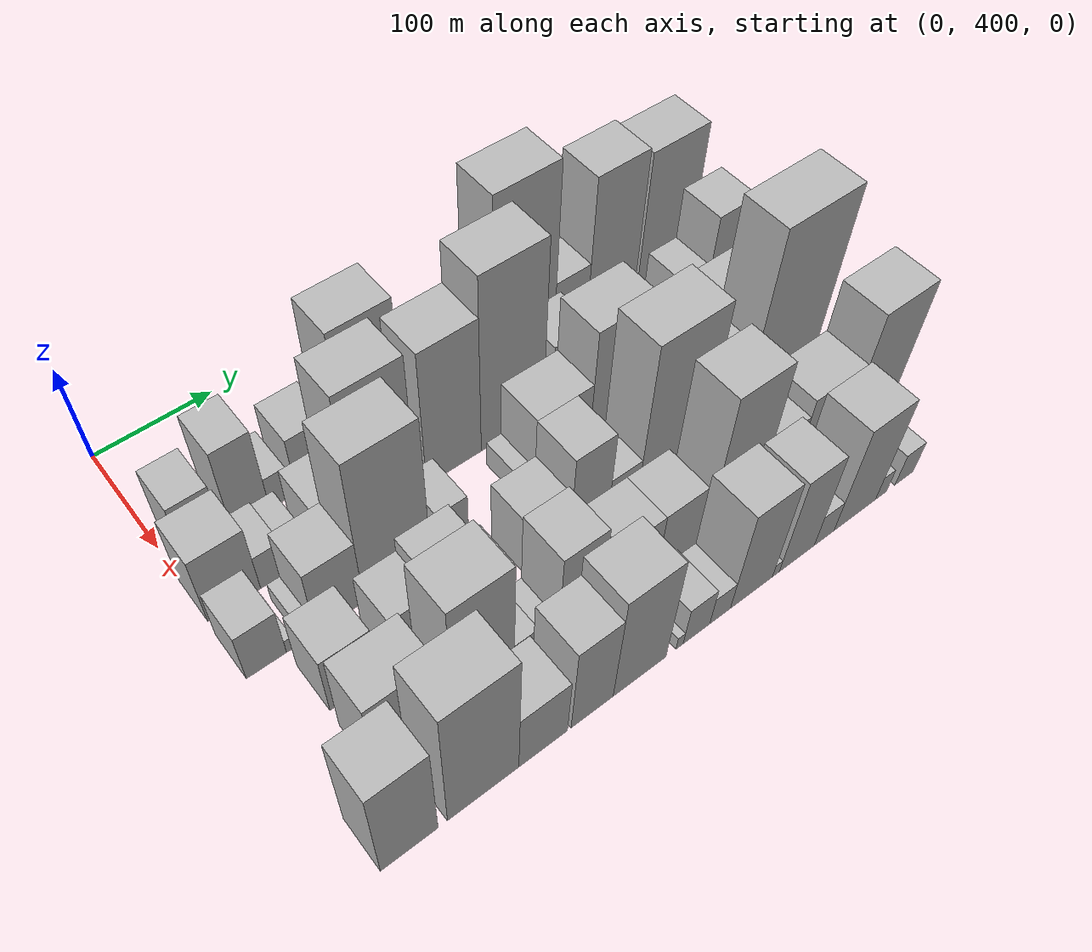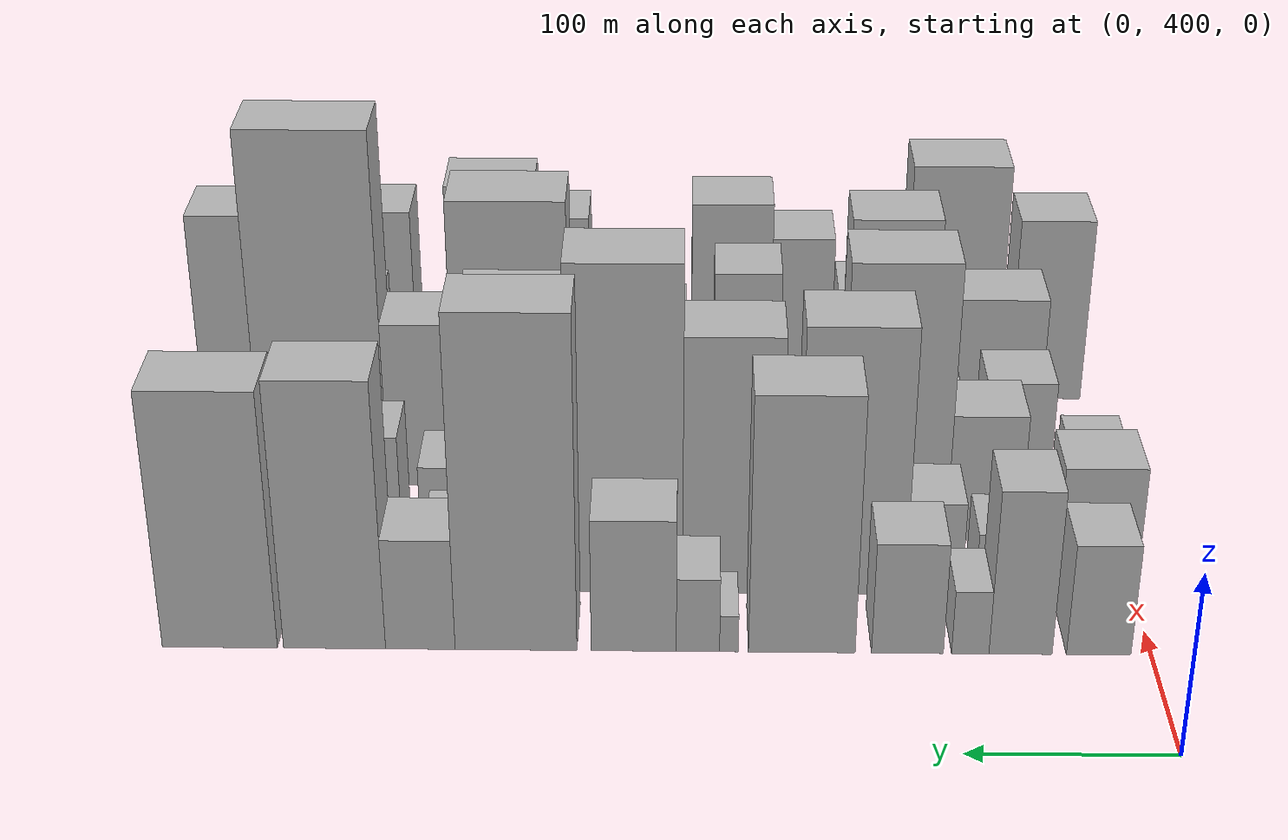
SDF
<sdf version="1.6">
 <world name="default">
  <model name="building_40">
   <static>1</static>
   <pose>100.0000 425.6944 0 0.000000 0.000000 0.000000</pose>
   <link name="link">
    <pose>0 0 31.50 0 0 0</pose>
    <collision name="collision"><geometry><box><size>40.0000 31.6009 63.0000</size></box></geometry></collision>
    <visual name="visual">
     <cast_shadows>0</cast_shadows>
     <geometry><box><size>40.0000 31.6009 63.0000</size></box></geometry>
     <material>
      <script>
       <uri>model://HANNAS_wall/materials/scripts</uri>
       <uri>model://HANNAS_wall/materials/textures</uri>
       <name>vrc/HANNAS_wall</name>
      </script>
     </material>
    </visual>
   </link>
  </model>
  <model name="building_41">
   <static>1</static>
   <pose>100.0000 463.9715 0 0.000000 0.000000 0.000000</pose>
   <link name="link">
    <pose>0 0 46.50 0 0 0</pose>
    <collision name="collision"><geometry><box><size>40.0000 30.9533 93.0000</size></box></geometry></collision>
    <visual name="visual">
     <cast_shadows>0</cast_shadows>
     <geometry><box><size>40.0000 30.9533 93.0000</size></box></geometry>
     <material>
      <script>
       <uri>model://HANNAS_wall/materials/scripts</uri>
       <uri>model://HANNAS_wall/materials/textures</uri>
       <name>vrc/HANNAS_wall</name>
      </script>
     </material>
    </visual>
   </link>
  </model>
  <model name="building_42">
   <static>1</static>
   <pose>100.0000 488.6046 0 0.000000 0.000000 0.000000</pose>
   <link name="link">
    <pose>0 0 18.00 0 0 0</pose>
    <collision name="collision"><geometry><box><size>40.0000 18.3129 36.0000</size></box></geometry></collision>
    <visual name="visual">
     <cast_shadows>0</cast_shadows>
     <geometry><box><size>40.0000 18.3129 36.0000</size></box></geometry>
     <material>
      <script>
       <uri>model://HANNAS_wall/materials/scripts</uri>
       <uri>model://HANNAS_wall/materials/textures</uri>
       <name>vrc/HANNAS_wall</name>
      </script>
     </material>
    </visual>
   </link>
  </model>
  <model name="building_43">
   <static>1</static>
   <pose>100.0000 519.3951 0 0.000000 0.000000 0.000000</pose>
   <link name="link">
    <pose>0 0 31.50 0 0 0</pose>
    <collision name="collision"><geometry><box><size>40.0000 35.2682 63.0000</size></box></geometry></collision>
    <visual name="visual">
     <cast_shadows>0</cast_shadows>
     <geometry><box><size>40.0000 35.2682 63.0000</size></box></geometry>
     <material>
      <script>
       <uri>model://HANNAS_wall/materials/scripts</uri>
       <uri>model://HANNAS_wall/materials/textures</uri>
       <name>vrc/HANNAS_wall</name>
      </script>
     </material>
    </visual>
   </link>
  </model>
  <model name="building_44">
   <static>1</static>
   <pose>100.0000 571.2320 0 0.000000 0.000000 0.000000</pose>
   <link name="link">
    <pose>0 0 72.00 0 0 0</pose>
    <collision name="collision"><geometry><box><size>40.0000 52.4056 144.0000</size></box></geometry></collision>
    <visual name="visual">
     <cast_shadows>0</cast_shadows>
     <geometry><box><size>40.0000 52.4056 144.0000</size></box></geometry>
     <material>
      <script>
       <uri>model://HANNAS_wall/materials/scripts</uri>
       <uri>model://HANNAS_wall/materials/textures</uri>
       <name>vrc/HANNAS_wall</name>
      </script>
     </material>
    </visual>
   </link>
  </model>
  <model name="building_45">
   <static>1</static>
   <pose>100.0000 607.0281 0 0.000000 0.000000 0.000000</pose>
   <link name="link">
    <pose>0 0 10.50 0 0 0</pose>
    <collision name="collision"><geometry><box><size>40.0000 9.1866 21.0000</size></box></geometry></collision>
    <visual name="visual">
     <cast_shadows>0</cast_shadows>
     <geometry><box><size>40.0000 9.1866 21.0000</size></box></geometry>
     <material>
      <script>
       <uri>model://HANNAS_wall/materials/scripts</uri>
       <uri>model://HANNAS_wall/materials/textures</uri>
       <name>vrc/HANNAS_wall</name>
      </script>
     </material>
    </visual>
   </link>
  </model>
  <model name="building_46">
   <static>1</static>
   <pose>100.0000 622.2681 0 0.000000 0.000000 0.000000</pose>
   <link name="link">
    <pose>0 0 21.00 0 0 0</pose>
    <collision name="collision"><geometry><box><size>40.0000 21.2934 42.0000</size></box></geometry></collision>
    <visual name="visual">
     <cast_shadows>0</cast_shadows>
     <geometry><box><size>40.0000 21.2934 42.0000</size></box></geometry>
     <material>
      <script>
       <uri>model://HANNAS_wall/materials/scripts</uri>
       <uri>model://HANNAS_wall/materials/textures</uri>
       <name>vrc/HANNAS_wall</name>
      </script>
     </material>
    </visual>
   </link>
  </model>
  <model name="building_47">
   <static>1</static>
   <pose>100.0000 653.8330 0 0.000000 0.000000 0.000000</pose>
   <link name="link">
    <pose>0 0 37.50 0 0 0</pose>
    <collision name="collision"><geometry><box><size>40.0000 41.8363 75.0000</size></box></geometry></collision>
    <visual name="visual">
     <cast_shadows>0</cast_shadows>
     <geometry><box><size>40.0000 41.8363 75.0000</size></box></geometry>
     <material>
      <script>
       <uri>model://HANNAS_wall/materials/scripts</uri>
       <uri>model://HANNAS_wall/materials/textures</uri>
       <name>vrc/HANNAS_wall</name>
      </script>
     </material>
    </visual>
   </link>
  </model>
  <model name="building_48">
   <static>1</static>
   <pose>100.0000 711.7514 0 0.000000 0.000000 0.000000</pose>
   <link name="link">
    <pose>0 0 93.00 0 0 0</pose>
    <collision name="collision"><geometry><box><size>40.0000 60.0006 186.0000</size></box></geometry></collision>
    <visual name="visual">
     <cast_shadows>0</cast_shadows>
     <geometry><box><size>40.0000 60.0006 186.0000</size></box></geometry>
     <material>
      <script>
       <uri>model://HANNAS_wall/materials/scripts</uri>
       <uri>model://HANNAS_wall/materials/textures</uri>
       <name>vrc/HANNAS_wall</name>
      </script>
     </material>
    </visual>
   </link>
  </model>
  <model name="building_49">
   <static>1</static>
   <pose>100.0000 758.8927 0 0.000000 0.000000 0.000000</pose>
   <link name="link">
    <pose>0 0 31.50 0 0 0</pose>
    <collision name="collision"><geometry><box><size>40.0000 34.2820 63.0000</size></box></geometry></collision>
    <visual name="visual">
     <cast_shadows>0</cast_shadows>
     <geometry><box><size>40.0000 34.2820 63.0000</size></box></geometry>
     <material>
      <script>
       <uri>model://HANNAS_wall/materials/scripts</uri>
       <uri>model://HANNAS_wall/materials/textures</uri>
       <name>vrc/HANNAS_wall</name>
      </script>
     </material>
    </visual>
   </link>
  </model>
  <model name="building_50">
   <static>1</static>
   <pose>100.0000 801.2108 0 0.000000 0.000000 0.000000</pose>
   <link name="link">
    <pose>0 0 75.00 0 0 0</pose>
    <collision name="collision"><geometry><box><size>40.0000 50.3542 150.0000</size></box></geometry></collision>
    <visual name="visual">
     <cast_shadows>0</cast_shadows>
     <geometry><box><size>40.0000 50.3542 150.0000</size></box></geometry>
     <material>
      <script>
       <uri>model://HANNAS_wall/materials/scripts</uri>
       <uri>model://HANNAS_wall/materials/textures</uri>
       <name>vrc/HANNAS_wall</name>
      </script>
     </material>
    </visual>
   </link>
  </model>
  <model name="building_51">
   <static>1</static>
   <pose>100.0000 857.8404 0 0.000000 0.000000 0.000000</pose>
   <link name="link">
    <pose>0 0 72.00 0 0 0</pose>
    <collision name="collision"><geometry><box><size>40.0000 56.9049 144.0000</size></box></geometry></collision>
    <visual name="visual">
     <cast_shadows>0</cast_shadows>
     <geometry><box><size>40.0000 56.9049 144.0000</size></box></geometry>
     <material>
      <script>
       <uri>model://HANNAS_wall/materials/scripts</uri>
       <uri>model://HANNAS_wall/materials/textures</uri>
       <name>vrc/HANNAS_wall</name>
      </script>
     </material>
    </visual>
   </link>
  </model>
  <model name="building_88">
   <static>1</static>
   <pose>152.0000 419.7935 0 0.000000 0.000000 0.000000</pose>
   <link name="link">
    <pose>0 0 37.50 0 0 0</pose>
    <collision name="collision"><geometry><box><size>40.0000 41.3453 75.0000</size></box></geometry></collision>
    <visual name="visual">
     <cast_shadows>0</cast_shadows>
     <geometry><box><size>40.0000 41.3453 75.0000</size></box></geometry>
     <material>
      <script>
       <uri>model://HANNAS_wall/materials/scripts</uri>
       <uri>model://HANNAS_wall/materials/textures</uri>
       <name>vrc/HANNAS_wall</name>
      </script>
     </material>
    </visual>
   </link>
  </model>
  <model name="building_89">
   <static>1</static>
   <pose>152.0000 451.4452 0 0.000000 0.000000 0.000000</pose>
   <link name="link">
    <pose>0 0 19.50 0 0 0</pose>
    <collision name="collision"><geometry><box><size>40.0000 21.9581 39.0000</size></box></geometry></collision>
    <visual name="visual">
     <cast_shadows>0</cast_shadows>
     <geometry><box><size>40.0000 21.9581 39.0000</size></box></geometry>
     <material>
      <script>
       <uri>model://HANNAS_wall/materials/scripts</uri>
       <uri>model://HANNAS_wall/materials/textures</uri>
       <name>vrc/HANNAS_wall</name>
      </script>
     </material>
    </visual>
   </link>
  </model>
  <model name="building_90">
   <static>1</static>
   <pose>152.0000 471.5481 0 0.000000 0.000000 0.000000</pose>
   <link name="link">
    <pose>0 0 18.00 0 0 0</pose>
    <collision name="collision"><geometry><box><size>40.0000 18.2478 36.0000</size></box></geometry></collision>
    <visual name="visual">
     <cast_shadows>0</cast_shadows>
     <geometry><box><size>40.0000 18.2478 36.0000</size></box></geometry>
     <material>
      <script>
       <uri>model://HANNAS_wall/materials/scripts</uri>
       <uri>model://HANNAS_wall/materials/textures</uri>
       <name>vrc/HANNAS_wall</name>
      </script>
     </material>
    </visual>
   </link>
  </model>
  <model name="building_91">
   <static>1</static>
   <pose>152.0000 501.9968 0 0.000000 0.000000 0.000000</pose>
   <link name="link">
    <pose>0 0 27.00 0 0 0</pose>
    <collision name="collision"><geometry><box><size>40.0000 28.6496 54.0000</size></box></geometry></collision>
    <visual name="visual">
     <cast_shadows>0</cast_shadows>
     <geometry><box><size>40.0000 28.6496 54.0000</size></box></geometry>
     <material>
      <script>
       <uri>model://HANNAS_wall/materials/scripts</uri>
       <uri>model://HANNAS_wall/materials/textures</uri>
       <name>vrc/HANNAS_wall</name>
      </script>
     </material>
    </visual>
   </link>
  </model>
  <model name="building_92">
   <static>1</static>
   <pose>152.0000 543.7386 0 0.000000 0.000000 0.000000</pose>
   <link name="link">
    <pose>0 0 76.50 0 0 0</pose>
    <collision name="collision"><geometry><box><size>40.0000 54.8338 153.0000</size></box></geometry></collision>
    <visual name="visual">
     <cast_shadows>0</cast_shadows>
     <geometry><box><size>40.0000 54.8338 153.0000</size></box></geometry>
     <material>
      <script>
       <uri>model://HANNAS_wall/materials/scripts</uri>
       <uri>model://HANNAS_wall/materials/textures</uri>
       <name>vrc/HANNAS_wall</name>
      </script>
     </material>
    </visual>
   </link>
  </model>
  <model name="building_93">
   <static>1</static>
   <pose>152.0000 605.1376 0 0.000000 0.000000 0.000000</pose>
   <link name="link">
    <pose>0 0 73.50 0 0 0</pose>
    <collision name="collision"><geometry><box><size>40.0000 49.9643 147.0000</size></box></geometry></collision>
    <visual name="visual">
     <cast_shadows>0</cast_shadows>
     <geometry><box><size>40.0000 49.9643 147.0000</size></box></geometry>
     <material>
      <script>
       <uri>model://HANNAS_wall/materials/scripts</uri>
       <uri>model://HANNAS_wall/materials/textures</uri>
       <name>vrc/HANNAS_wall</name>
      </script>
     </material>
    </visual>
   </link>
  </model>
  <model name="building_94">
   <static>1</static>
   <pose>152.0000 659.5156 0 0.000000 0.000000 0.000000</pose>
   <link name="link">
    <pose>0 0 93.00 0 0 0</pose>
    <collision name="collision"><geometry><box><size>40.0000 58.7918 186.0000</size></box></geometry></collision>
    <visual name="visual">
     <cast_shadows>0</cast_shadows>
     <geometry><box><size>40.0000 58.7918 186.0000</size></box></geometry>
     <material>
      <script>
       <uri>model://HANNAS_wall/materials/scripts</uri>
       <uri>model://HANNAS_wall/materials/textures</uri>
       <name>vrc/HANNAS_wall</name>
      </script>
     </material>
    </visual>
   </link>
  </model>
  <model name="building_95">
   <static>1</static>
   <pose>152.0000 716.8400 0 0.000000 0.000000 0.000000</pose>
   <link name="link">
    <pose>0 0 34.50 0 0 0</pose>
    <collision name="collision"><geometry><box><size>40.0000 37.8569 69.0000</size></box></geometry></collision>
    <visual name="visual">
     <cast_shadows>0</cast_shadows>
     <geometry><box><size>40.0000 37.8569 69.0000</size></box></geometry>
     <material>
      <script>
       <uri>model://HANNAS_wall/materials/scripts</uri>
       <uri>model://HANNAS_wall/materials/textures</uri>
       <name>vrc/HANNAS_wall</name>
      </script>
     </material>
    </visual>
   </link>
  </model>
  <model name="building_96">
   <static>1</static>
   <pose>152.0000 751.1101 0 0.000000 0.000000 0.000000</pose>
   <link name="link">
    <pose>0 0 18.00 0 0 0</pose>
    <collision name="collision"><geometry><box><size>40.0000 20.6834 36.0000</size></box></geometry></collision>
    <visual name="visual">
     <cast_shadows>0</cast_shadows>
     <geometry><box><size>40.0000 20.6834 36.0000</size></box></geometry>
     <material>
      <script>
       <uri>model://HANNAS_wall/materials/scripts</uri>
       <uri>model://HANNAS_wall/materials/textures</uri>
       <name>vrc/HANNAS_wall</name>
      </script>
     </material>
    </visual>
   </link>
  </model>
  <model name="building_97">
   <static>1</static>
   <pose>152.0000 839.6045 0 0.000000 0.000000 0.000000</pose>
   <link name="link">
    <pose>0 0 27.00 0 0 0</pose>
    <collision name="collision"><geometry><box><size>40.0000 28.7684 54.0000</size></box></geometry></collision>
    <visual name="visual">
     <cast_shadows>0</cast_shadows>
     <geometry><box><size>40.0000 28.7684 54.0000</size></box></geometry>
     <material>
      <script>
       <uri>model://HANNAS_wall/materials/scripts</uri>
       <uri>model://HANNAS_wall/materials/textures</uri>
       <name>vrc/HANNAS_wall</name>
      </script>
     </material>
    </visual>
   </link>
  </model>
  <model name="building_98">
   <static>1</static>
   <pose>152.0000 873.5390 0 0.000000 0.000000 0.000000</pose>
   <link name="link">
    <pose>0 0 52.50 0 0 0</pose>
    <collision name="collision"><geometry><box><size>40.0000 39.1006 105.0000</size></box></geometry></collision>
    <visual name="visual">
     <cast_shadows>0</cast_shadows>
     <geometry><box><size>40.0000 39.1006 105.0000</size></box></geometry>
     <material>
      <script>
       <uri>model://HANNAS_wall/materials/scripts</uri>
       <uri>model://HANNAS_wall/materials/textures</uri>
       <name>vrc/HANNAS_wall</name>
      </script>
     </material>
    </visual>
   </link>
  </model>
  <model name="building_135">
   <static>1</static>
   <pose>204.0000 413.5578 0 0.000000 0.000000 0.000000</pose>
   <link name="link">
    <pose>0 0 27.00 0 0 0</pose>
    <collision name="collision"><geometry><box><size>40.0000 30.7943 54.0000</size></box></geometry></collision>
    <visual name="visual">
     <cast_shadows>0</cast_shadows>
     <geometry><box><size>40.0000 30.7943 54.0000</size></box></geometry>
     <material>
      <script>
       <uri>model://HANNAS_wall/materials/scripts</uri>
       <uri>model://HANNAS_wall/materials/textures</uri>
       <name>vrc/HANNAS_wall</name>
      </script>
     </material>
    </visual>
   </link>
  </model>
  <model name="building_136">
   <static>1</static>
   <pose>204.0000 432.2280 0 0.000000 0.000000 0.000000</pose>
   <link name="link">
    <pose>0 0 7.50 0 0 0</pose>
    <collision name="collision"><geometry><box><size>40.0000 6.5461 15.0000</size></box></geometry></collision>
    <visual name="visual">
     <cast_shadows>0</cast_shadows>
     <geometry><box><size>40.0000 6.5461 15.0000</size></box></geometry>
     <material>
      <script>
       <uri>model://HANNAS_wall/materials/scripts</uri>
       <uri>model://HANNAS_wall/materials/textures</uri>
       <name>vrc/HANNAS_wall</name>
      </script>
     </material>
    </visual>
   </link>
  </model>
  <model name="building_137">
   <static>1</static>
   <pose>204.0000 446.5692 0 0.000000 0.000000 0.000000</pose>
   <link name="link">
    <pose>0 0 10.50 0 0 0</pose>
    <collision name="collision"><geometry><box><size>40.0000 10.1363 21.0000</size></box></geometry></collision>
    <visual name="visual">
     <cast_shadows>0</cast_shadows>
     <geometry><box><size>40.0000 10.1363 21.0000</size></box></geometry>
     <material>
      <script>
       <uri>model://HANNAS_wall/materials/scripts</uri>
       <uri>model://HANNAS_wall/materials/textures</uri>
       <name>vrc/HANNAS_wall</name>
      </script>
     </material>
    </visual>
   </link>
  </model>
  <model name="building_138">
   <static>1</static>
   <pose>204.0000 471.1603 0 0.000000 0.000000 0.000000</pose>
   <link name="link">
    <pose>0 0 37.50 0 0 0</pose>
    <collision name="collision"><geometry><box><size>40.0000 39.0460 75.0000</size></box></geometry></collision>
    <visual name="visual">
     <cast_shadows>0</cast_shadows>
     <geometry><box><size>40.0000 39.0460 75.0000</size></box></geometry>
     <material>
      <script>
       <uri>model://HANNAS_wall/materials/scripts</uri>
       <uri>model://HANNAS_wall/materials/textures</uri>
       <name>vrc/HANNAS_wall</name>
      </script>
     </material>
    </visual>
   </link>
  </model>
  <model name="building_139">
   <static>1</static>
   <pose>204.0000 518.7400 0 0.000000 0.000000 0.000000</pose>
   <link name="link">
    <pose>0 0 81.00 0 0 0</pose>
    <collision name="collision"><geometry><box><size>40.0000 56.1135 162.0000</size></box></geometry></collision>
    <visual name="visual">
     <cast_shadows>0</cast_shadows>
     <geometry><box><size>40.0000 56.1135 162.0000</size></box></geometry>
     <material>
      <script>
       <uri>model://HANNAS_wall/materials/scripts</uri>
       <uri>model://HANNAS_wall/materials/textures</uri>
       <name>vrc/HANNAS_wall</name>
      </script>
     </material>
    </visual>
   </link>
  </model>
  <model name="building_140">
   <static>1</static>
   <pose>204.0000 566.6855 0 0.000000 0.000000 0.000000</pose>
   <link name="link">
    <pose>0 0 24.00 0 0 0</pose>
    <collision name="collision"><geometry><box><size>40.0000 25.7774 48.0000</size></box></geometry></collision>
    <visual name="visual">
     <cast_shadows>0</cast_shadows>
     <geometry><box><size>40.0000 25.7774 48.0000</size></box></geometry>
     <material>
      <script>
       <uri>model://HANNAS_wall/materials/scripts</uri>
       <uri>model://HANNAS_wall/materials/textures</uri>
       <name>vrc/HANNAS_wall</name>
      </script>
     </material>
    </visual>
   </link>
  </model>
  <model name="building_141">
   <static>1</static>
   <pose>204.0000 632.7377 0 0.000000 0.000000 0.000000</pose>
   <link name="link">
    <pose>0 0 13.50 0 0 0</pose>
    <collision name="collision"><geometry><box><size>40.0000 13.4424 27.0000</size></box></geometry></collision>
    <visual name="visual">
     <cast_shadows>0</cast_shadows>
     <geometry><box><size>40.0000 13.4424 27.0000</size></box></geometry>
     <material>
      <script>
       <uri>model://HANNAS_wall/materials/scripts</uri>
       <uri>model://HANNAS_wall/materials/textures</uri>
       <name>vrc/HANNAS_wall</name>
      </script>
     </material>
    </visual>
   </link>
  </model>
  <model name="building_142">
   <static>1</static>
   <pose>204.0000 664.4616 0 0.000000 0.000000 0.000000</pose>
   <link name="link">
    <pose>0 0 42.00 0 0 0</pose>
    <collision name="collision"><geometry><box><size>40.0000 50.0055 84.0000</size></box></geometry></collision>
    <visual name="visual">
     <cast_shadows>0</cast_shadows>
     <geometry><box><size>40.0000 50.0055 84.0000</size></box></geometry>
     <material>
      <script>
       <uri>model://HANNAS_wall/materials/scripts</uri>
       <uri>model://HANNAS_wall/materials/textures</uri>
       <name>vrc/HANNAS_wall</name>
      </script>
     </material>
    </visual>
   </link>
  </model>
  <model name="building_143">
   <static>1</static>
   <pose>204.0000 717.0106 0 0.000000 0.000000 0.000000</pose>
   <link name="link">
    <pose>0 0 69.00 0 0 0</pose>
    <collision name="collision"><geometry><box><size>40.0000 55.0925 138.0000</size></box></geometry></collision>
    <visual name="visual">
     <cast_shadows>0</cast_shadows>
     <geometry><box><size>40.0000 55.0925 138.0000</size></box></geometry>
     <material>
      <script>
       <uri>model://HANNAS_wall/materials/scripts</uri>
       <uri>model://HANNAS_wall/materials/textures</uri>
       <name>vrc/HANNAS_wall</name>
      </script>
     </material>
    </visual>
   </link>
  </model>
  <model name="building_144">
   <static>1</static>
   <pose>204.0000 756.8129 0 0.000000 0.000000 0.000000</pose>
   <link name="link">
    <pose>0 0 21.00 0 0 0</pose>
    <collision name="collision"><geometry><box><size>40.0000 24.5121 42.0000</size></box></geometry></collision>
    <visual name="visual">
     <cast_shadows>0</cast_shadows>
     <geometry><box><size>40.0000 24.5121 42.0000</size></box></geometry>
     <material>
      <script>
       <uri>model://HANNAS_wall/materials/scripts</uri>
       <uri>model://HANNAS_wall/materials/textures</uri>
       <name>vrc/HANNAS_wall</name>
      </script>
     </material>
    </visual>
   </link>
  </model>
  <model name="building_145">
   <static>1</static>
   <pose>204.0000 795.1197 0 0.000000 0.000000 0.000000</pose>
   <link name="link">
    <pose>0 0 30.00 0 0 0</pose>
    <collision name="collision"><geometry><box><size>40.0000 32.1015 60.0000</size></box></geometry></collision>
    <visual name="visual">
     <cast_shadows>0</cast_shadows>
     <geometry><box><size>40.0000 32.1015 60.0000</size></box></geometry>
     <material>
      <script>
       <uri>model://HANNAS_wall/materials/scripts</uri>
       <uri>model://HANNAS_wall/materials/textures</uri>
       <name>vrc/HANNAS_wall</name>
      </script>
     </material>
    </visual>
   </link>
  </model>
  <model name="building_146">
   <static>1</static>
   <pose>204.0000 842.2960 0 0.000000 0.000000 0.000000</pose>
   <link name="link">
    <pose>0 0 40.50 0 0 0</pose>
    <collision name="collision"><geometry><box><size>40.0000 46.2511 81.0000</size></box></geometry></collision>
    <visual name="visual">
     <cast_shadows>0</cast_shadows>
     <geometry><box><size>40.0000 46.2511 81.0000</size></box></geometry>
     <material>
      <script>
       <uri>model://HANNAS_wall/materials/scripts</uri>
       <uri>model://HANNAS_wall/materials/textures</uri>
       <name>vrc/HANNAS_wall</name>
      </script>
     </material>
    </visual>
   </link>
  </model>
  <model name="building_184">
   <static>1</static>
   <pose>256.0000 447.9922 0 0.000000 0.000000 0.000000</pose>
   <link name="link">
    <pose>0 0 33.00 0 0 0</pose>
    <collision name="collision"><geometry><box><size>40.0000 37.4320 66.0000</size></box></geometry></collision>
    <visual name="visual">
     <cast_shadows>0</cast_shadows>
     <geometry><box><size>40.0000 37.4320 66.0000</size></box></geometry>
     <material>
      <script>
       <uri>model://HANNAS_wall/materials/scripts</uri>
       <uri>model://HANNAS_wall/materials/textures</uri>
       <name>vrc/HANNAS_wall</name>
      </script>
     </material>
    </visual>
   </link>
  </model>
  <model name="building_185">
   <static>1</static>
   <pose>256.0000 469.9682 0 0.000000 0.000000 0.000000</pose>
   <link name="link">
    <pose>0 0 7.50 0 0 0</pose>
    <collision name="collision"><geometry><box><size>40.0000 6.5200 15.0000</size></box></geometry></collision>
    <visual name="visual">
     <cast_shadows>0</cast_shadows>
     <geometry><box><size>40.0000 6.5200 15.0000</size></box></geometry>
     <material>
      <script>
       <uri>model://HANNAS_wall/materials/scripts</uri>
       <uri>model://HANNAS_wall/materials/textures</uri>
       <name>vrc/HANNAS_wall</name>
      </script>
     </material>
    </visual>
   </link>
  </model>
  <model name="building_186">
   <static>1</static>
   <pose>256.0000 496.8310 0 0.000000 0.000000 0.000000</pose>
   <link name="link">
    <pose>0 0 30.00 0 0 0</pose>
    <collision name="collision"><geometry><box><size>40.0000 33.2057 60.0000</size></box></geometry></collision>
    <visual name="visual">
     <cast_shadows>0</cast_shadows>
     <geometry><box><size>40.0000 33.2057 60.0000</size></box></geometry>
     <material>
      <script>
       <uri>model://HANNAS_wall/materials/scripts</uri>
       <uri>model://HANNAS_wall/materials/textures</uri>
       <name>vrc/HANNAS_wall</name>
      </script>
     </material>
    </visual>
   </link>
  </model>
  <model name="building_187">
   <static>1</static>
   <pose>256.0000 534.7373 0 0.000000 0.000000 0.000000</pose>
   <link name="link">
    <pose>0 0 37.50 0 0 0</pose>
    <collision name="collision"><geometry><box><size>40.0000 42.6069 75.0000</size></box></geometry></collision>
    <visual name="visual">
     <cast_shadows>0</cast_shadows>
     <geometry><box><size>40.0000 42.6069 75.0000</size></box></geometry>
     <material>
      <script>
       <uri>model://HANNAS_wall/materials/scripts</uri>
       <uri>model://HANNAS_wall/materials/textures</uri>
       <name>vrc/HANNAS_wall</name>
      </script>
     </material>
    </visual>
   </link>
  </model>
  <model name="building_188">
   <static>1</static>
   <pose>256.0000 564.2483 0 0.000000 0.000000 0.000000</pose>
   <link name="link">
    <pose>0 0 9.00 0 0 0</pose>
    <collision name="collision"><geometry><box><size>40.0000 8.4150 18.0000</size></box></geometry></collision>
    <visual name="visual">
     <cast_shadows>0</cast_shadows>
     <geometry><box><size>40.0000 8.4150 18.0000</size></box></geometry>
     <material>
      <script>
       <uri>model://HANNAS_wall/materials/scripts</uri>
       <uri>model://HANNAS_wall/materials/textures</uri>
       <name>vrc/HANNAS_wall</name>
      </script>
     </material>
    </visual>
   </link>
  </model>
  <model name="building_189">
   <static>1</static>
   <pose>256.0000 574.5244 0 0.000000 0.000000 0.000000</pose>
   <link name="link">
    <pose>0 0 13.50 0 0 0</pose>
    <collision name="collision"><geometry><box><size>40.0000 12.1372 27.0000</size></box></geometry></collision>
    <visual name="visual">
     <cast_shadows>0</cast_shadows>
     <geometry><box><size>40.0000 12.1372 27.0000</size></box></geometry>
     <material>
      <script>
       <uri>model://HANNAS_wall/materials/scripts</uri>
       <uri>model://HANNAS_wall/materials/textures</uri>
       <name>vrc/HANNAS_wall</name>
      </script>
     </material>
    </visual>
   </link>
  </model>
  <model name="building_190">
   <static>1</static>
   <pose>256.0000 609.6912 0 0.000000 0.000000 0.000000</pose>
   <link name="link">
    <pose>0 0 33.00 0 0 0</pose>
    <collision name="collision"><geometry><box><size>40.0000 38.1964 66.0000</size></box></geometry></collision>
    <visual name="visual">
     <cast_shadows>0</cast_shadows>
     <geometry><box><size>40.0000 38.1964 66.0000</size></box></geometry>
     <material>
      <script>
       <uri>model://HANNAS_wall/materials/scripts</uri>
       <uri>model://HANNAS_wall/materials/textures</uri>
       <name>vrc/HANNAS_wall</name>
      </script>
     </material>
    </visual>
   </link>
  </model>
  <model name="building_191">
   <static>1</static>
   <pose>256.0000 646.2163 0 0.000000 0.000000 0.000000</pose>
   <link name="link">
    <pose>0 0 52.50 0 0 0</pose>
    <collision name="collision"><geometry><box><size>40.0000 34.8539 105.0000</size></box></geometry></collision>
    <visual name="visual">
     <cast_shadows>0</cast_shadows>
     <geometry><box><size>40.0000 34.8539 105.0000</size></box></geometry>
     <material>
      <script>
       <uri>model://HANNAS_wall/materials/scripts</uri>
       <uri>model://HANNAS_wall/materials/textures</uri>
       <name>vrc/HANNAS_wall</name>
      </script>
     </material>
    </visual>
   </link>
  </model>
  <model name="building_192">
   <static>1</static>
   <pose>256.0000 677.6875 0 0.000000 0.000000 0.000000</pose>
   <link name="link">
    <pose>0 0 25.50 0 0 0</pose>
    <collision name="collision"><geometry><box><size>40.0000 28.0885 51.0000</size></box></geometry></collision>
    <visual name="visual">
     <cast_shadows>0</cast_shadows>
     <geometry><box><size>40.0000 28.0885 51.0000</size></box></geometry>
     <material>
      <script>
       <uri>model://HANNAS_wall/materials/scripts</uri>
       <uri>model://HANNAS_wall/materials/textures</uri>
       <name>vrc/HANNAS_wall</name>
      </script>
     </material>
    </visual>
   </link>
  </model>
  <model name="building_193">
   <static>1</static>
   <pose>256.0000 723.0903 0 0.000000 0.000000 0.000000</pose>
   <link name="link">
    <pose>0 0 85.50 0 0 0</pose>
    <collision name="collision"><geometry><box><size>40.0000 62.7170 171.0000</size></box></geometry></collision>
    <visual name="visual">
     <cast_shadows>0</cast_shadows>
     <geometry><box><size>40.0000 62.7170 171.0000</size></box></geometry>
     <material>
      <script>
       <uri>model://HANNAS_wall/materials/scripts</uri>
       <uri>model://HANNAS_wall/materials/textures</uri>
       <name>vrc/HANNAS_wall</name>
      </script>
     </material>
    </visual>
   </link>
  </model>
  <model name="building_194">
   <static>1</static>
   <pose>256.0000 773.2423 0 0.000000 0.000000 0.000000</pose>
   <link name="link">
    <pose>0 0 49.50 0 0 0</pose>
    <collision name="collision"><geometry><box><size>40.0000 37.5870 99.0000</size></box></geometry></collision>
    <visual name="visual">
     <cast_shadows>0</cast_shadows>
     <geometry><box><size>40.0000 37.5870 99.0000</size></box></geometry>
     <material>
      <script>
       <uri>model://HANNAS_wall/materials/scripts</uri>
       <uri>model://HANNAS_wall/materials/textures</uri>
       <name>vrc/HANNAS_wall</name>
      </script>
     </material>
    </visual>
   </link>
  </model>
  <model name="building_195">
   <static>1</static>
   <pose>256.0000 826.6643 0 0.000000 0.000000 0.000000</pose>
   <link name="link">
    <pose>0 0 105.00 0 0 0</pose>
    <collision name="collision"><geometry><box><size>40.0000 69.2569 210.0000</size></box></geometry></collision>
    <visual name="visual">
     <cast_shadows>0</cast_shadows>
     <geometry><box><size>40.0000 69.2569 210.0000</size></box></geometry>
     <material>
      <script>
       <uri>model://HANNAS_wall/materials/scripts</uri>
       <uri>model://HANNAS_wall/materials/textures</uri>
       <name>vrc/HANNAS_wall</name>
      </script>
     </material>
    </visual>
   </link>
  </model>
  <model name="building_235">
   <static>1</static>
   <pose>308.0000 454.9186 0 0.000000 0.000000 0.000000</pose>
   <link name="link">
    <pose>0 0 45.00 0 0 0</pose>
    <collision name="collision"><geometry><box><size>40.0000 52.7343 90.0000</size></box></geometry></collision>
    <visual name="visual">
     <cast_shadows>0</cast_shadows>
     <geometry><box><size>40.0000 52.7343 90.0000</size></box></geometry>
     <material>
      <script>
       <uri>model://HANNAS_wall/materials/scripts</uri>
       <uri>model://HANNAS_wall/materials/textures</uri>
       <name>vrc/HANNAS_wall</name>
      </script>
     </material>
    </visual>
   </link>
  </model>
  <model name="building_236">
   <static>1</static>
   <pose>308.0000 514.0402 0 0.000000 0.000000 0.000000</pose>
   <link name="link">
    <pose>0 0 69.00 0 0 0</pose>
    <collision name="collision"><geometry><box><size>40.0000 49.5089 138.0000</size></box></geometry></collision>
    <visual name="visual">
     <cast_shadows>0</cast_shadows>
     <geometry><box><size>40.0000 49.5089 138.0000</size></box></geometry>
     <material>
      <script>
       <uri>model://HANNAS_wall/materials/scripts</uri>
       <uri>model://HANNAS_wall/materials/textures</uri>
       <name>vrc/HANNAS_wall</name>
      </script>
     </material>
    </visual>
   </link>
  </model>
  <model name="building_237">
   <static>1</static>
   <pose>308.0000 548.7487 0 0.000000 0.000000 0.000000</pose>
   <link name="link">
    <pose>0 0 19.50 0 0 0</pose>
    <collision name="collision"><geometry><box><size>40.0000 19.9081 39.0000</size></box></geometry></collision>
    <visual name="visual">
     <cast_shadows>0</cast_shadows>
     <geometry><box><size>40.0000 19.9081 39.0000</size></box></geometry>
     <material>
      <script>
       <uri>model://HANNAS_wall/materials/scripts</uri>
       <uri>model://HANNAS_wall/materials/textures</uri>
       <name>vrc/HANNAS_wall</name>
      </script>
     </material>
    </visual>
   </link>
  </model>
  <model name="building_238">
   <static>1</static>
   <pose>308.0000 567.3605 0 0.000000 0.000000 0.000000</pose>
   <link name="link">
    <pose>0 0 15.00 0 0 0</pose>
    <collision name="collision"><geometry><box><size>40.0000 17.3155 30.0000</size></box></geometry></collision>
    <visual name="visual">
     <cast_shadows>0</cast_shadows>
     <geometry><box><size>40.0000 17.3155 30.0000</size></box></geometry>
     <material>
      <script>
       <uri>model://HANNAS_wall/materials/scripts</uri>
       <uri>model://HANNAS_wall/materials/textures</uri>
       <name>vrc/HANNAS_wall</name>
      </script>
     </material>
    </visual>
   </link>
  </model>
  <model name="building_239">
   <static>1</static>
   <pose>308.0000 594.5099 0 0.000000 0.000000 0.000000</pose>
   <link name="link">
    <pose>0 0 52.50 0 0 0</pose>
    <collision name="collision"><geometry><box><size>40.0000 36.9833 105.0000</size></box></geometry></collision>
    <visual name="visual">
     <cast_shadows>0</cast_shadows>
     <geometry><box><size>40.0000 36.9833 105.0000</size></box></geometry>
     <material>
      <script>
       <uri>model://HANNAS_wall/materials/scripts</uri>
       <uri>model://HANNAS_wall/materials/textures</uri>
       <name>vrc/HANNAS_wall</name>
      </script>
     </material>
    </visual>
   </link>
  </model>
  <model name="building_240">
   <static>1</static>
   <pose>308.0000 619.4539 0 0.000000 0.000000 0.000000</pose>
   <link name="link">
    <pose>0 0 13.50 0 0 0</pose>
    <collision name="collision"><geometry><box><size>40.0000 12.9047 27.0000</size></box></geometry></collision>
    <visual name="visual">
     <cast_shadows>0</cast_shadows>
     <geometry><box><size>40.0000 12.9047 27.0000</size></box></geometry>
     <material>
      <script>
       <uri>model://HANNAS_wall/materials/scripts</uri>
       <uri>model://HANNAS_wall/materials/textures</uri>
       <name>vrc/HANNAS_wall</name>
      </script>
     </material>
    </visual>
   </link>
  </model>
  <model name="building_241">
   <static>1</static>
   <pose>308.0000 645.2076 0 0.000000 0.000000 0.000000</pose>
   <link name="link">
    <pose>0 0 34.50 0 0 0</pose>
    <collision name="collision"><geometry><box><size>40.0000 38.6027 69.0000</size></box></geometry></collision>
    <visual name="visual">
     <cast_shadows>0</cast_shadows>
     <geometry><box><size>40.0000 38.6027 69.0000</size></box></geometry>
     <material>
      <script>
       <uri>model://HANNAS_wall/materials/scripts</uri>
       <uri>model://HANNAS_wall/materials/textures</uri>
       <name>vrc/HANNAS_wall</name>
      </script>
     </material>
    </visual>
   </link>
  </model>
  <model name="building_242">
   <static>1</static>
   <pose>308.0000 683.5032 0 0.000000 0.000000 0.000000</pose>
   <link name="link">
    <pose>0 0 34.50 0 0 0</pose>
    <collision name="collision"><geometry><box><size>40.0000 37.9885 69.0000</size></box></geometry></collision>
    <visual name="visual">
     <cast_shadows>0</cast_shadows>
     <geometry><box><size>40.0000 37.9885 69.0000</size></box></geometry>
     <material>
      <script>
       <uri>model://HANNAS_wall/materials/scripts</uri>
       <uri>model://HANNAS_wall/materials/textures</uri>
       <name>vrc/HANNAS_wall</name>
      </script>
     </material>
    </visual>
   </link>
  </model>
  <model name="building_243">
   <static>1</static>
   <pose>308.0000 735.8550 0 0.000000 0.000000 0.000000</pose>
   <link name="link">
    <pose>0 0 78.00 0 0 0</pose>
    <collision name="collision"><geometry><box><size>40.0000 48.7151 156.0000</size></box></geometry></collision>
    <visual name="visual">
     <cast_shadows>0</cast_shadows>
     <geometry><box><size>40.0000 48.7151 156.0000</size></box></geometry>
     <material>
      <script>
       <uri>model://HANNAS_wall/materials/scripts</uri>
       <uri>model://HANNAS_wall/materials/textures</uri>
       <name>vrc/HANNAS_wall</name>
      </script>
     </material>
    </visual>
   </link>
  </model>
  <model name="building_244">
   <static>1</static>
   <pose>308.0000 778.9976 0 0.000000 0.000000 0.000000</pose>
   <link name="link">
    <pose>0 0 34.50 0 0 0</pose>
    <collision name="collision"><geometry><box><size>40.0000 37.5702 69.0000</size></box></geometry></collision>
    <visual name="visual">
     <cast_shadows>0</cast_shadows>
     <geometry><box><size>40.0000 37.5702 69.0000</size></box></geometry>
     <material>
      <script>
       <uri>model://HANNAS_wall/materials/scripts</uri>
       <uri>model://HANNAS_wall/materials/textures</uri>
       <name>vrc/HANNAS_wall</name>
      </script>
     </material>
    </visual>
   </link>
  </model>
  <model name="building_245">
   <static>1</static>
   <pose>308.0000 823.7447 0 0.000000 0.000000 0.000000</pose>
   <link name="link">
    <pose>0 0 43.50 0 0 0</pose>
    <collision name="collision"><geometry><box><size>40.0000 51.9239 87.0000</size></box></geometry></collision>
    <visual name="visual">
     <cast_shadows>0</cast_shadows>
     <geometry><box><size>40.0000 51.9239 87.0000</size></box></geometry>
     <material>
      <script>
       <uri>model://HANNAS_wall/materials/scripts</uri>
       <uri>model://HANNAS_wall/materials/textures</uri>
       <name>vrc/HANNAS_wall</name>
      </script>
     </material>
    </visual>
   </link>
  </model>
  <model name="building_246">
   <static>1</static>
   <pose>308.0000 875.7898 0 0.000000 0.000000 0.000000</pose>
   <link name="link">
    <pose>0 0 69.00 0 0 0</pose>
    <collision name="collision"><geometry><box><size>40.0000 52.1662 138.0000</size></box></geometry></collision>
    <visual name="visual">
     <cast_shadows>0</cast_shadows>
     <geometry><box><size>40.0000 52.1662 138.0000</size></box></geometry>
     <material>
      <script>
       <uri>model://HANNAS_wall/materials/scripts</uri>
       <uri>model://HANNAS_wall/materials/textures</uri>
       <name>vrc/HANNAS_wall</name>
      </script>
     </material>
    </visual>
   </link>
  </model>
  <model name="building_281">
   <static>1</static>
   <pose>360.0000 418.5339 0 0.000000 0.000000 0.000000</pose>
   <link name="link">
    <pose>0 0 57.00 0 0 0</pose>
    <collision name="collision"><geometry><box><size>40.0000 42.3635 114.0000</size></box></geometry></collision>
    <visual name="visual">
     <cast_shadows>0</cast_shadows>
     <geometry><box><size>40.0000 42.3635 114.0000</size></box></geometry>
     <material>
      <script>
       <uri>model://HANNAS_wall/materials/scripts</uri>
       <uri>model://HANNAS_wall/materials/textures</uri>
       <name>vrc/HANNAS_wall</name>
      </script>
     </material>
    </visual>
   </link>
  </model>
  <model name="building_282">
   <static>1</static>
   <pose>360.0000 474.3168 0 0.000000 0.000000 0.000000</pose>
   <link name="link">
    <pose>0 0 73.50 0 0 0</pose>
    <collision name="collision"><geometry><box><size>40.0000 55.2023 147.0000</size></box></geometry></collision>
    <visual name="visual">
     <cast_shadows>0</cast_shadows>
     <geometry><box><size>40.0000 55.2023 147.0000</size></box></geometry>
     <material>
      <script>
       <uri>model://HANNAS_wall/materials/scripts</uri>
       <uri>model://HANNAS_wall/materials/textures</uri>
       <name>vrc/HANNAS_wall</name>
      </script>
     </material>
    </visual>
   </link>
  </model>
  <model name="building_283">
   <static>1</static>
   <pose>360.0000 521.5688 0 0.000000 0.000000 0.000000</pose>
   <link name="link">
    <pose>0 0 34.50 0 0 0</pose>
    <collision name="collision"><geometry><box><size>40.0000 39.3016 69.0000</size></box></geometry></collision>
    <visual name="visual">
     <cast_shadows>0</cast_shadows>
     <geometry><box><size>40.0000 39.3016 69.0000</size></box></geometry>
     <material>
      <script>
       <uri>model://HANNAS_wall/materials/scripts</uri>
       <uri>model://HANNAS_wall/materials/textures</uri>
       <name>vrc/HANNAS_wall</name>
      </script>
     </material>
    </visual>
   </link>
  </model>
  <model name="building_284">
   <static>1</static>
   <pose>360.0000 561.8753 0 0.000000 0.000000 0.000000</pose>
   <link name="link">
    <pose>0 0 51.00 0 0 0</pose>
    <collision name="collision"><geometry><box><size>40.0000 35.3115 102.0000</size></box></geometry></collision>
    <visual name="visual">
     <cast_shadows>0</cast_shadows>
     <geometry><box><size>40.0000 35.3115 102.0000</size></box></geometry>
     <material>
      <script>
       <uri>model://HANNAS_wall/materials/scripts</uri>
       <uri>model://HANNAS_wall/materials/textures</uri>
       <name>vrc/HANNAS_wall</name>
      </script>
     </material>
    </visual>
   </link>
  </model>
  <model name="building_285">
   <static>1</static>
   <pose>360.0000 602.5351 0 0.000000 0.000000 0.000000</pose>
   <link name="link">
    <pose>0 0 61.50 0 0 0</pose>
    <collision name="collision"><geometry><box><size>40.0000 46.0082 123.0000</size></box></geometry></collision>
    <visual name="visual">
     <cast_shadows>0</cast_shadows>
     <geometry><box><size>40.0000 46.0082 123.0000</size></box></geometry>
     <material>
      <script>
       <uri>model://HANNAS_wall/materials/scripts</uri>
       <uri>model://HANNAS_wall/materials/textures</uri>
       <name>vrc/HANNAS_wall</name>
      </script>
     </material>
    </visual>
   </link>
  </model>
  <model name="building_286">
   <static>1</static>
   <pose>360.0000 637.7092 0 0.000000 0.000000 0.000000</pose>
   <link name="link">
    <pose>0 0 7.50 0 0 0</pose>
    <collision name="collision"><geometry><box><size>40.0000 6.3399 15.0000</size></box></geometry></collision>
    <visual name="visual">
     <cast_shadows>0</cast_shadows>
     <geometry><box><size>40.0000 6.3399 15.0000</size></box></geometry>
     <material>
      <script>
       <uri>model://HANNAS_wall/materials/scripts</uri>
       <uri>model://HANNAS_wall/materials/textures</uri>
       <name>vrc/HANNAS_wall</name>
      </script>
     </material>
    </visual>
   </link>
  </model>
  <model name="building_287">
   <static>1</static>
   <pose>360.0000 653.0058 0 0.000000 0.000000 0.000000</pose>
   <link name="link">
    <pose>0 0 22.50 0 0 0</pose>
    <collision name="collision"><geometry><box><size>40.0000 24.2533 45.0000</size></box></geometry></collision>
    <visual name="visual">
     <cast_shadows>0</cast_shadows>
     <geometry><box><size>40.0000 24.2533 45.0000</size></box></geometry>
     <material>
      <script>
       <uri>model://HANNAS_wall/materials/scripts</uri>
       <uri>model://HANNAS_wall/materials/textures</uri>
       <name>vrc/HANNAS_wall</name>
      </script>
     </material>
    </visual>
   </link>
  </model>
  <model name="building_288">
   <static>1</static>
   <pose>360.0000 674.7257 0 0.000000 0.000000 0.000000</pose>
   <link name="link">
    <pose>0 0 16.50 0 0 0</pose>
    <collision name="collision"><geometry><box><size>40.0000 19.1865 33.0000</size></box></geometry></collision>
    <visual name="visual">
     <cast_shadows>0</cast_shadows>
     <geometry><box><size>40.0000 19.1865 33.0000</size></box></geometry>
     <material>
      <script>
       <uri>model://HANNAS_wall/materials/scripts</uri>
       <uri>model://HANNAS_wall/materials/textures</uri>
       <name>vrc/HANNAS_wall</name>
      </script>
     </material>
    </visual>
   </link>
  </model>
  <model name="building_289">
   <static>1</static>
   <pose>360.0000 704.3852 0 0.000000 0.000000 0.000000</pose>
   <link name="link">
    <pose>0 0 57.00 0 0 0</pose>
    <collision name="collision"><geometry><box><size>40.0000 40.1324 114.0000</size></box></geometry></collision>
    <visual name="visual">
     <cast_shadows>0</cast_shadows>
     <geometry><box><size>40.0000 40.1324 114.0000</size></box></geometry>
     <material>
      <script>
       <uri>model://HANNAS_wall/materials/scripts</uri>
       <uri>model://HANNAS_wall/materials/textures</uri>
       <name>vrc/HANNAS_wall</name>
      </script>
     </material>
    </visual>
   </link>
  </model>
  <model name="building_290">
   <static>1</static>
   <pose>360.0000 727.7980 0 0.000000 0.000000 0.000000</pose>
   <link name="link">
    <pose>0 0 7.50 0 0 0</pose>
    <collision name="collision"><geometry><box><size>40.0000 6.6933 15.0000</size></box></geometry></collision>
    <visual name="visual">
     <cast_shadows>0</cast_shadows>
     <geometry><box><size>40.0000 6.6933 15.0000</size></box></geometry>
     <material>
      <script>
       <uri>model://HANNAS_wall/materials/scripts</uri>
       <uri>model://HANNAS_wall/materials/textures</uri>
       <name>vrc/HANNAS_wall</name>
      </script>
     </material>
    </visual>
   </link>
  </model>
  <model name="building_291">
   <static>1</static>
   <pose>360.0000 748.4608 0 0.000000 0.000000 0.000000</pose>
   <link name="link">
    <pose>0 0 54.00 0 0 0</pose>
    <collision name="collision"><geometry><box><size>40.0000 34.6323 108.0000</size></box></geometry></collision>
    <visual name="visual">
     <cast_shadows>0</cast_shadows>
     <geometry><box><size>40.0000 34.6323 108.0000</size></box></geometry>
     <material>
      <script>
       <uri>model://HANNAS_wall/materials/scripts</uri>
       <uri>model://HANNAS_wall/materials/textures</uri>
       <name>vrc/HANNAS_wall</name>
      </script>
     </material>
    </visual>
   </link>
  </model>
  <model name="building_292">
   <static>1</static>
   <pose>360.0000 775.7578 0 0.000000 0.000000 0.000000</pose>
   <link name="link">
    <pose>0 0 18.00 0 0 0</pose>
    <collision name="collision"><geometry><box><size>40.0000 19.9616 36.0000</size></box></geometry></collision>
    <visual name="visual">
     <cast_shadows>0</cast_shadows>
     <geometry><box><size>40.0000 19.9616 36.0000</size></box></geometry>
     <material>
      <script>
       <uri>model://HANNAS_wall/materials/scripts</uri>
       <uri>model://HANNAS_wall/materials/textures</uri>
       <name>vrc/HANNAS_wall</name>
      </script>
     </material>
    </visual>
   </link>
  </model>
  <model name="building_293">
   <static>1</static>
   <pose>360.0000 807.3034 0 0.000000 0.000000 0.000000</pose>
   <link name="link">
    <pose>0 0 58.50 0 0 0</pose>
    <collision name="collision"><geometry><box><size>40.0000 43.1296 117.0000</size></box></geometry></collision>
    <visual name="visual">
     <cast_shadows>0</cast_shadows>
     <geometry><box><size>40.0000 43.1296 117.0000</size></box></geometry>
     <material>
      <script>
       <uri>model://HANNAS_wall/materials/scripts</uri>
       <uri>model://HANNAS_wall/materials/textures</uri>
       <name>vrc/HANNAS_wall</name>
      </script>
     </material>
    </visual>
   </link>
  </model>
  <model name="building_294">
   <static>1</static>
   <pose>360.0000 834.7630 0 0.000000 0.000000 0.000000</pose>
   <link name="link">
    <pose>0 0 13.50 0 0 0</pose>
    <collision name="collision"><geometry><box><size>40.0000 11.7895 27.0000</size></box></geometry></collision>
    <visual name="visual">
     <cast_shadows>0</cast_shadows>
     <geometry><box><size>40.0000 11.7895 27.0000</size></box></geometry>
     <material>
      <script>
       <uri>model://HANNAS_wall/materials/scripts</uri>
       <uri>model://HANNAS_wall/materials/textures</uri>
       <name>vrc/HANNAS_wall</name>
      </script>
     </material>
    </visual>
   </link>
  </model>
  <model name="building_295">
   <static>1</static>
   <pose>360.0000 859.6335 0 0.000000 0.000000 0.000000</pose>
   <link name="link">
    <pose>0 0 18.00 0 0 0</pose>
    <collision name="collision"><geometry><box><size>40.0000 19.9515 36.0000</size></box></geometry></collision>
    <visual name="visual">
     <cast_shadows>0</cast_shadows>
     <geometry><box><size>40.0000 19.9515 36.0000</size></box></geometry>
     <material>
      <script>
       <uri>model://HANNAS_wall/materials/scripts</uri>
       <uri>model://HANNAS_wall/materials/textures</uri>
       <name>vrc/HANNAS_wall</name>
      </script>
     </material>
    </visual>
   </link>
  </model>
 </world>
</sdf>
